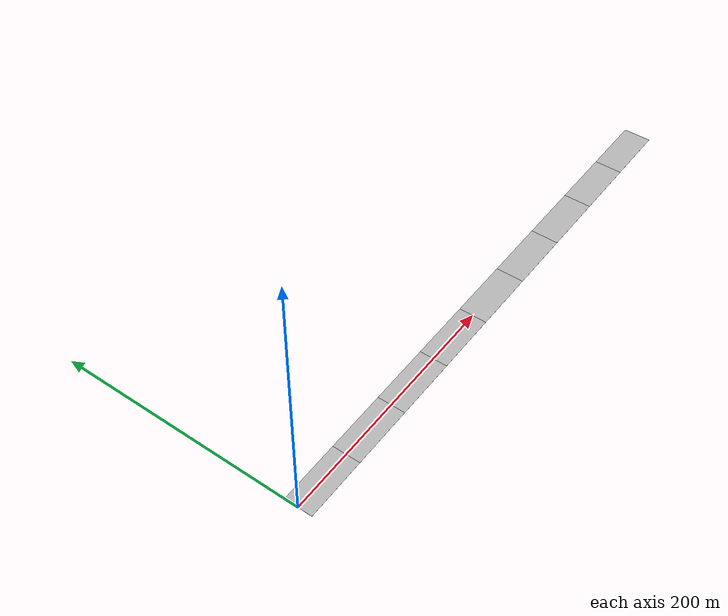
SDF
<sdf version="1.6">
 <world name="default">
  <model name="straight_4lane_50m">
   <link name="link_0">
    <inertial>
     <mass>1</mass>
     <inertia>
      <ixx>0.166667</ixx>
      <ixy>0</ixy>
      <ixz>0</ixz>
      <iyy>0.166667</iyy>
      <iyz>0</iyz>
      <izz>0.166667</izz>
     </inertia>
    </inertial>
    <visual name="visual">
     <geometry>
      <mesh><uri>model://straight_4lane_50m/straight_4lane_50m.dae</uri><scale>1 1 1</scale></mesh>
     </geometry>
    </visual>
    <collision name="collision">
     <geometry>
      <mesh><uri>model://straight_4lane_50m/straight_4lane_50m.dae</uri><scale>1 1 1</scale></mesh>
     </geometry>
     <surface>
      <friction>
       <ode><mu>1</mu><mu2>1</mu2><fdir1>0 0 0</fdir1><slip1>0</slip1><slip2>0</slip2></ode>
       <torsional>
        <coefficient>1</coefficient>
        <patch_radius>0</patch_radius>
        <surface_radius>0</surface_radius>
        <use_patch_radius>1</use_patch_radius>
        <ode><slip>0</slip></ode>
       </torsional>
      </friction>
      <bounce><restitution_coefficient>0</restitution_coefficient><threshold>1e+06</threshold></bounce>
      <contact>
       <collide_without_contact>0</collide_without_contact>
       <collide_without_contact_bitmask>1</collide_without_contact_bitmask>
       <collide_bitmask>1</collide_bitmask>
       <ode>
        <soft_cfm>0</soft_cfm>
        <soft_erp>0.2</soft_erp>
        <kp>1e+13</kp>
        <kd>1</kd>
        <max_vel>0.01</max_vel>
        <min_depth>0</min_depth>
       </ode>
       <bullet>
        <split_impulse>1</split_impulse>
        <split_impulse_penetration_threshold>-0.01</split_impulse_penetration_threshold>
        <soft_cfm>0</soft_cfm>
        <soft_erp>0.2</soft_erp>
        <kp>1e+13</kp>
        <kd>1</kd>
       </bullet>
      </contact>
     </surface>
    </collision>
   </link>
   <static>1</static>
   <pose>25 0 0 0 0 -1.5707</pose>
  </model>
  <model name="straight_4lane_50m_clone_1">
   <link name="link_0">
    <inertial>
     <mass>1</mass>
     <inertia>
      <ixx>0.166667</ixx>
      <ixy>0</ixy>
      <ixz>0</ixz>
      <iyy>0.166667</iyy>
      <iyz>0</iyz>
      <izz>0.166667</izz>
     </inertia>
    </inertial>
    <visual name="visual">
     <geometry>
      <mesh><uri>model://straight_4lane_50m/straight_4lane_50m.dae</uri><scale>1 1 1</scale></mesh>
     </geometry>
    </visual>
    <collision name="collision">
     <geometry>
      <mesh><uri>model://straight_4lane_50m/straight_4lane_50m.dae</uri><scale>1 1 1</scale></mesh>
     </geometry>
     <surface>
      <friction>
       <ode><mu>1</mu><mu2>1</mu2><fdir1>0 0 0</fdir1><slip1>0</slip1><slip2>0</slip2></ode>
       <torsional>
        <coefficient>1</coefficient>
        <patch_radius>0</patch_radius>
        <surface_radius>0</surface_radius>
        <use_patch_radius>1</use_patch_radius>
        <ode><slip>0</slip></ode>
       </torsional>
      </friction>
      <bounce><restitution_coefficient>0</restitution_coefficient><threshold>1e+06</threshold></bounce>
      <contact>
       <collide_without_contact>0</collide_without_contact>
       <collide_without_contact_bitmask>1</collide_without_contact_bitmask>
       <collide_bitmask>1</collide_bitmask>
       <ode>
        <soft_cfm>0</soft_cfm>
        <soft_erp>0.2</soft_erp>
        <kp>1e+13</kp>
        <kd>1</kd>
        <max_vel>0.01</max_vel>
        <min_depth>0</min_depth>
       </ode>
       <bullet>
        <split_impulse>1</split_impulse>
        <split_impulse_penetration_threshold>-0.01</split_impulse_penetration_threshold>
        <soft_cfm>0</soft_cfm>
        <soft_erp>0.2</soft_erp>
        <kp>1e+13</kp>
        <kd>1</kd>
       </bullet>
      </contact>
     </surface>
    </collision>
   </link>
   <static>1</static>
   <pose>75 0 0 0 0 -1.5707</pose>
  </model>
  <model name="straight_4lane_50m_clone_1_clone_0">
   <link name="link_0">
    <inertial>
     <mass>1</mass>
     <inertia>
      <ixx>0.166667</ixx>
      <ixy>0</ixy>
      <ixz>0</ixz>
      <iyy>0.166667</iyy>
      <iyz>0</iyz>
      <izz>0.166667</izz>
     </inertia>
    </inertial>
    <visual name="visual">
     <geometry>
      <mesh><uri>model://straight_4lane_50m/straight_4lane_50m.dae</uri><scale>1 1 1</scale></mesh>
     </geometry>
    </visual>
    <collision name="collision">
     <geometry>
      <mesh><uri>model://straight_4lane_50m/straight_4lane_50m.dae</uri><scale>1 1 1</scale></mesh>
     </geometry>
     <surface>
      <friction>
       <ode><mu>1</mu><mu2>1</mu2><fdir1>0 0 0</fdir1><slip1>0</slip1><slip2>0</slip2></ode>
       <torsional>
        <coefficient>1</coefficient>
        <patch_radius>0</patch_radius>
        <surface_radius>0</surface_radius>
        <use_patch_radius>1</use_patch_radius>
        <ode><slip>0</slip></ode>
       </torsional>
      </friction>
      <bounce><restitution_coefficient>0</restitution_coefficient><threshold>1e+06</threshold></bounce>
      <contact>
       <collide_without_contact>0</collide_without_contact>
       <collide_without_contact_bitmask>1</collide_without_contact_bitmask>
       <collide_bitmask>1</collide_bitmask>
       <ode>
        <soft_cfm>0</soft_cfm>
        <soft_erp>0.2</soft_erp>
        <kp>1e+13</kp>
        <kd>1</kd>
        <max_vel>0.01</max_vel>
        <min_depth>0</min_depth>
       </ode>
       <bullet>
        <split_impulse>1</split_impulse>
        <split_impulse_penetration_threshold>-0.01</split_impulse_penetration_threshold>
        <soft_cfm>0</soft_cfm>
        <soft_erp>0.2</soft_erp>
        <kp>1e+13</kp>
        <kd>1</kd>
       </bullet>
      </contact>
     </surface>
    </collision>
   </link>
   <static>1</static>
   <pose>175 0 0 0 0 -1.5707</pose>
  </model>
  <model name="straight_4lane_50m_0">
   <link name="link_0">
    <inertial>
     <mass>1</mass>
     <inertia>
      <ixx>0.166667</ixx>
      <ixy>0</ixy>
      <ixz>0</ixz>
      <iyy>0.166667</iyy>
      <iyz>0</iyz>
      <izz>0.166667</izz>
     </inertia>
    </inertial>
    <visual name="visual">
     <geometry>
      <mesh><uri>model://straight_4lane_50m/straight_4lane_50m.dae</uri><scale>1 1 1</scale></mesh>
     </geometry>
    </visual>
    <collision name="collision">
     <geometry>
      <mesh><uri>model://straight_4lane_50m/straight_4lane_50m.dae</uri><scale>1 1 1</scale></mesh>
     </geometry>
     <surface>
      <friction>
       <ode><mu>1</mu><mu2>1</mu2><fdir1>0 0 0</fdir1><slip1>0</slip1><slip2>0</slip2></ode>
       <torsional>
        <coefficient>1</coefficient>
        <patch_radius>0</patch_radius>
        <surface_radius>0</surface_radius>
        <use_patch_radius>1</use_patch_radius>
        <ode><slip>0</slip></ode>
       </torsional>
      </friction>
      <bounce><restitution_coefficient>0</restitution_coefficient><threshold>1e+06</threshold></bounce>
      <contact>
       <collide_without_contact>0</collide_without_contact>
       <collide_without_contact_bitmask>1</collide_without_contact_bitmask>
       <collide_bitmask>1</collide_bitmask>
       <ode>
        <soft_cfm>0</soft_cfm>
        <soft_erp>0.2</soft_erp>
        <kp>1e+13</kp>
        <kd>1</kd>
        <max_vel>0.01</max_vel>
        <min_depth>0</min_depth>
       </ode>
       <bullet>
        <split_impulse>1</split_impulse>
        <split_impulse_penetration_threshold>-0.01</split_impulse_penetration_threshold>
        <soft_cfm>0</soft_cfm>
        <soft_erp>0.2</soft_erp>
        <kp>1e+13</kp>
        <kd>1</kd>
       </bullet>
      </contact>
     </surface>
    </collision>
   </link>
   <static>1</static>
   <pose>125 0 0 0 0 -1.5707</pose>
  </model>
  <model name="straight_4lane_50m_4">
   <link name="link_0">
    <inertial>
     <mass>1</mass>
     <inertia>
      <ixx>0.166667</ixx>
      <ixy>0</ixy>
      <ixz>0</ixz>
      <iyy>0.166667</iyy>
      <iyz>0</iyz>
      <izz>0.166667</izz>
     </inertia>
    </inertial>
    <visual name="visual">
     <geometry>
      <mesh><uri>model://straight_4lane_50m/straight_4lane_50m.dae</uri><scale>1 1 1</scale></mesh>
     </geometry>
    </visual>
    <collision name="collision">
     <geometry>
      <mesh><uri>model://straight_4lane_50m/straight_4lane_50m.dae</uri><scale>1 1 1</scale></mesh>
     </geometry>
     <surface>
      <friction>
       <ode><mu>1</mu><mu2>1</mu2><fdir1>0 0 0</fdir1><slip1>0</slip1><slip2>0</slip2></ode>
       <torsional>
        <coefficient>1</coefficient>
        <patch_radius>0</patch_radius>
        <surface_radius>0</surface_radius>
        <use_patch_radius>1</use_patch_radius>
        <ode><slip>0</slip></ode>
       </torsional>
      </friction>
      <bounce><restitution_coefficient>0</restitution_coefficient><threshold>1e+06</threshold></bounce>
      <contact>
       <collide_without_contact>0</collide_without_contact>
       <collide_without_contact_bitmask>1</collide_without_contact_bitmask>
       <collide_bitmask>1</collide_bitmask>
       <ode>
        <soft_cfm>0</soft_cfm>
        <soft_erp>0.2</soft_erp>
        <kp>1e+13</kp>
        <kd>1</kd>
        <max_vel>0.01</max_vel>
        <min_depth>0</min_depth>
       </ode>
       <bullet>
        <split_impulse>1</split_impulse>
        <split_impulse_penetration_threshold>-0.01</split_impulse_penetration_threshold>
        <soft_cfm>0</soft_cfm>
        <soft_erp>0.2</soft_erp>
        <kp>1e+13</kp>
        <kd>1</kd>
       </bullet>
      </contact>
     </surface>
    </collision>
   </link>
   <static>1</static>
   <pose>225 0 0 0 0 -1.5707</pose>
  </model>
  <model name="straight_4lane_50m_5">
   <link name="link_0">
    <inertial>
     <mass>1</mass>
     <inertia>
      <ixx>0.166667</ixx>
      <ixy>0</ixy>
      <ixz>0</ixz>
      <iyy>0.166667</iyy>
      <iyz>0</iyz>
      <izz>0.166667</izz>
     </inertia>
    </inertial>
    <visual name="visual">
     <geometry>
      <mesh><uri>model://straight_4lane_50m/straight_4lane_50m.dae</uri><scale>1 1 1</scale></mesh>
     </geometry>
    </visual>
    <collision name="collision">
     <geometry>
      <mesh><uri>model://straight_4lane_50m/straight_4lane_50m.dae</uri><scale>1 1 1</scale></mesh>
     </geometry>
     <surface>
      <friction>
       <ode><mu>1</mu><mu2>1</mu2><fdir1>0 0 0</fdir1><slip1>0</slip1><slip2>0</slip2></ode>
       <torsional>
        <coefficient>1</coefficient>
        <patch_radius>0</patch_radius>
        <surface_radius>0</surface_radius>
        <use_patch_radius>1</use_patch_radius>
        <ode><slip>0</slip></ode>
       </torsional>
      </friction>
      <bounce><restitution_coefficient>0</restitution_coefficient><threshold>1e+06</threshold></bounce>
      <contact>
       <collide_without_contact>0</collide_without_contact>
       <collide_without_contact_bitmask>1</collide_without_contact_bitmask>
       <collide_bitmask>1</collide_bitmask>
       <ode>
        <soft_cfm>0</soft_cfm>
        <soft_erp>0.2</soft_erp>
        <kp>1e+13</kp>
        <kd>1</kd>
        <max_vel>0.01</max_vel>
        <min_depth>0</min_depth>
       </ode>
       <bullet>
        <split_impulse>1</split_impulse>
        <split_impulse_penetration_threshold>-0.01</split_impulse_penetration_threshold>
        <soft_cfm>0</soft_cfm>
        <soft_erp>0.2</soft_erp>
        <kp>1e+13</kp>
        <kd>1</kd>
       </bullet>
      </contact>
     </surface>
    </collision>
   </link>
   <static>1</static>
   <pose>275 0 0 0 0 -1.5707</pose>
  </model>
  <model name="straight_4lane_50m_6">
   <link name="link_0">
    <inertial>
     <mass>1</mass>
     <inertia>
      <ixx>0.166667</ixx>
      <ixy>0</ixy>
      <ixz>0</ixz>
      <iyy>0.166667</iyy>
      <iyz>0</iyz>
      <izz>0.166667</izz>
     </inertia>
    </inertial>
    <visual name="visual">
     <geometry>
      <mesh><uri>model://straight_4lane_50m/straight_4lane_50m.dae</uri><scale>1 1 1</scale></mesh>
     </geometry>
    </visual>
    <collision name="collision">
     <geometry>
      <mesh><uri>model://straight_4lane_50m/straight_4lane_50m.dae</uri><scale>1 1 1</scale></mesh>
     </geometry>
     <surface>
      <friction>
       <ode><mu>1</mu><mu2>1</mu2><fdir1>0 0 0</fdir1><slip1>0</slip1><slip2>0</slip2></ode>
       <torsional>
        <coefficient>1</coefficient>
        <patch_radius>0</patch_radius>
        <surface_radius>0</surface_radius>
        <use_patch_radius>1</use_patch_radius>
        <ode><slip>0</slip></ode>
       </torsional>
      </friction>
      <bounce><restitution_coefficient>0</restitution_coefficient><threshold>1e+06</threshold></bounce>
      <contact>
       <collide_without_contact>0</collide_without_contact>
       <collide_without_contact_bitmask>1</collide_without_contact_bitmask>
       <collide_bitmask>1</collide_bitmask>
       <ode>
        <soft_cfm>0</soft_cfm>
        <soft_erp>0.2</soft_erp>
        <kp>1e+13</kp>
        <kd>1</kd>
        <max_vel>0.01</max_vel>
        <min_depth>0</min_depth>
       </ode>
       <bullet>
        <split_impulse>1</split_impulse>
        <split_impulse_penetration_threshold>-0.01</split_impulse_penetration_threshold>
        <soft_cfm>0</soft_cfm>
        <soft_erp>0.2</soft_erp>
        <kp>1e+13</kp>
        <kd>1</kd>
       </bullet>
      </contact>
     </surface>
    </collision>
   </link>
   <static>1</static>
   <pose>325 0 0 0 0 -1.5707</pose>
  </model>
  <model name="straight_4lane_50m_7">
   <link name="link_0">
    <inertial>
     <mass>1</mass>
     <inertia>
      <ixx>0.166667</ixx>
      <ixy>0</ixy>
      <ixz>0</ixz>
      <iyy>0.166667</iyy>
      <iyz>0</iyz>
      <izz>0.166667</izz>
     </inertia>
    </inertial>
    <visual name="visual">
     <geometry>
      <mesh><uri>model://straight_4lane_50m/straight_4lane_50m.dae</uri><scale>1 1 1</scale></mesh>
     </geometry>
    </visual>
    <collision name="collision">
     <geometry>
      <mesh><uri>model://straight_4lane_50m/straight_4lane_50m.dae</uri><scale>1 1 1</scale></mesh>
     </geometry>
     <surface>
      <friction>
       <ode><mu>1</mu><mu2>1</mu2><fdir1>0 0 0</fdir1><slip1>0</slip1><slip2>0</slip2></ode>
       <torsional>
        <coefficient>1</coefficient>
        <patch_radius>0</patch_radius>
        <surface_radius>0</surface_radius>
        <use_patch_radius>1</use_patch_radius>
        <ode><slip>0</slip></ode>
       </torsional>
      </friction>
      <bounce><restitution_coefficient>0</restitution_coefficient><threshold>1e+06</threshold></bounce>
      <contact>
       <collide_without_contact>0</collide_without_contact>
       <collide_without_contact_bitmask>1</collide_without_contact_bitmask>
       <collide_bitmask>1</collide_bitmask>
       <ode>
        <soft_cfm>0</soft_cfm>
        <soft_erp>0.2</soft_erp>
        <kp>1e+13</kp>
        <kd>1</kd>
        <max_vel>0.01</max_vel>
        <min_depth>0</min_depth>
       </ode>
       <bullet>
        <split_impulse>1</split_impulse>
        <split_impulse_penetration_threshold>-0.01</split_impulse_penetration_threshold>
        <soft_cfm>0</soft_cfm>
        <soft_erp>0.2</soft_erp>
        <kp>1e+13</kp>
        <kd>1</kd>
       </bullet>
      </contact>
     </surface>
    </collision>
   </link>
   <static>1</static>
   <pose>375 0 0 0 0 -1.5707</pose>
  </model>
  <model name="straight_4lane_50m_8">
   <link name="link_0">
    <inertial>
     <mass>1</mass>
     <inertia>
      <ixx>0.166667</ixx>
      <ixy>0</ixy>
      <ixz>0</ixz>
      <iyy>0.166667</iyy>
      <iyz>0</iyz>
      <izz>0.166667</izz>
     </inertia>
    </inertial>
    <visual name="visual">
     <geometry>
      <mesh><uri>model://straight_4lane_50m/straight_4lane_50m.dae</uri><scale>1 1 1</scale></mesh>
     </geometry>
    </visual>
    <collision name="collision">
     <geometry>
      <mesh><uri>model://straight_4lane_50m/straight_4lane_50m.dae</uri><scale>1 1 1</scale></mesh>
     </geometry>
     <surface>
      <friction>
       <ode><mu>1</mu><mu2>1</mu2><fdir1>0 0 0</fdir1><slip1>0</slip1><slip2>0</slip2></ode>
       <torsional>
        <coefficient>1</coefficient>
        <patch_radius>0</patch_radius>
        <surface_radius>0</surface_radius>
        <use_patch_radius>1</use_patch_radius>
        <ode><slip>0</slip></ode>
       </torsional>
      </friction>
      <bounce><restitution_coefficient>0</restitution_coefficient><threshold>1e+06</threshold></bounce>
      <contact>
       <collide_without_contact>0</collide_without_contact>
       <collide_without_contact_bitmask>1</collide_without_contact_bitmask>
       <collide_bitmask>1</collide_bitmask>
       <ode>
        <soft_cfm>0</soft_cfm>
        <soft_erp>0.2</soft_erp>
        <kp>1e+13</kp>
        <kd>1</kd>
        <max_vel>0.01</max_vel>
        <min_depth>0</min_depth>
       </ode>
       <bullet>
        <split_impulse>1</split_impulse>
        <split_impulse_penetration_threshold>-0.01</split_impulse_penetration_threshold>
        <soft_cfm>0</soft_cfm>
        <soft_erp>0.2</soft_erp>
        <kp>1e+13</kp>
        <kd>1</kd>
       </bullet>
      </contact>
     </surface>
    </collision>
   </link>
   <static>1</static>
   <pose>425 0 0 0 0 -1.5707</pose>
  </model>
  <model name="straight_4lane_50m_4">
   <link name="link_0">
    <inertial>
     <mass>1</mass>
     <inertia>
      <ixx>0.166667</ixx>
      <ixy>0</ixy>
      <ixz>0</ixz>
      <iyy>0.166667</iyy>
      <iyz>0</iyz>
      <izz>0.166667</izz>
     </inertia>
    </inertial>
    <visual name="visual">
     <geometry>
      <mesh><uri>model://straight_4lane_50m/straight_4lane_50m.dae</uri><scale>1 1 1</scale></mesh>
     </geometry>
    </visual>
    <collision name="collision">
     <geometry>
      <mesh><uri>model://straight_4lane_50m/straight_4lane_50m.dae</uri><scale>1 1 1</scale></mesh>
     </geometry>
     <surface>
      <friction>
       <ode><mu>1</mu><mu2>1</mu2><fdir1>0 0 0</fdir1><slip1>0</slip1><slip2>0</slip2></ode>
       <torsional>
        <coefficient>1</coefficient>
        <patch_radius>0</patch_radius>
        <surface_radius>0</surface_radius>
        <use_patch_radius>1</use_patch_radius>
        <ode><slip>0</slip></ode>
       </torsional>
      </friction>
      <bounce><restitution_coefficient>0</restitution_coefficient><threshold>1e+06</threshold></bounce>
      <contact>
       <collide_without_contact>0</collide_without_contact>
       <collide_without_contact_bitmask>1</collide_without_contact_bitmask>
       <collide_bitmask>1</collide_bitmask>
       <ode>
        <soft_cfm>0</soft_cfm>
        <soft_erp>0.2</soft_erp>
        <kp>1e+13</kp>
        <kd>1</kd>
        <max_vel>0.01</max_vel>
        <min_depth>0</min_depth>
       </ode>
       <bullet>
        <split_impulse>1</split_impulse>
        <split_impulse_penetration_threshold>-0.01</split_impulse_penetration_threshold>
        <soft_cfm>0</soft_cfm>
        <soft_erp>0.2</soft_erp>
        <kp>1e+13</kp>
        <kd>1</kd>
       </bullet>
      </contact>
     </surface>
    </collision>
   </link>
   <static>1</static>
   <pose>225 0 0 0 0 -1.5707</pose>
  </model>
  <model name="straight_4lane_50m_8">
   <link name="link_0">
    <inertial>
     <mass>1</mass>
     <inertia>
      <ixx>0.166667</ixx>
      <ixy>0</ixy>
      <ixz>0</ixz>
      <iyy>0.166667</iyy>
      <iyz>0</iyz>
      <izz>0.166667</izz>
     </inertia>
    </inertial>
    <visual name="visual">
     <geometry>
      <mesh><uri>model://straight_4lane_50m/straight_4lane_50m.dae</uri><scale>1 1 1</scale></mesh>
     </geometry>
    </visual>
    <collision name="collision">
     <geometry>
      <mesh><uri>model://straight_4lane_50m/straight_4lane_50m.dae</uri><scale>1 1 1</scale></mesh>
     </geometry>
     <surface>
      <friction>
       <ode><mu>1</mu><mu2>1</mu2><fdir1>0 0 0</fdir1><slip1>0</slip1><slip2>0</slip2></ode>
       <torsional>
        <coefficient>1</coefficient>
        <patch_radius>0</patch_radius>
        <surface_radius>0</surface_radius>
        <use_patch_radius>1</use_patch_radius>
        <ode><slip>0</slip></ode>
       </torsional>
      </friction>
      <bounce><restitution_coefficient>0</restitution_coefficient><threshold>1e+06</threshold></bounce>
      <contact>
       <collide_without_contact>0</collide_without_contact>
       <collide_without_contact_bitmask>1</collide_without_contact_bitmask>
       <collide_bitmask>1</collide_bitmask>
       <ode>
        <soft_cfm>0</soft_cfm>
        <soft_erp>0.2</soft_erp>
        <kp>1e+13</kp>
        <kd>1</kd>
        <max_vel>0.01</max_vel>
        <min_depth>0</min_depth>
       </ode>
       <bullet>
        <split_impulse>1</split_impulse>
        <split_impulse_penetration_threshold>-0.01</split_impulse_penetration_threshold>
        <soft_cfm>0</soft_cfm>
        <soft_erp>0.2</soft_erp>
        <kp>1e+13</kp>
        <kd>1</kd>
       </bullet>
      </contact>
     </surface>
    </collision>
   </link>
   <static>1</static>
   <pose>425 0 0 0 0 -1.5707</pose>
  </model>
 </world>
</sdf>
